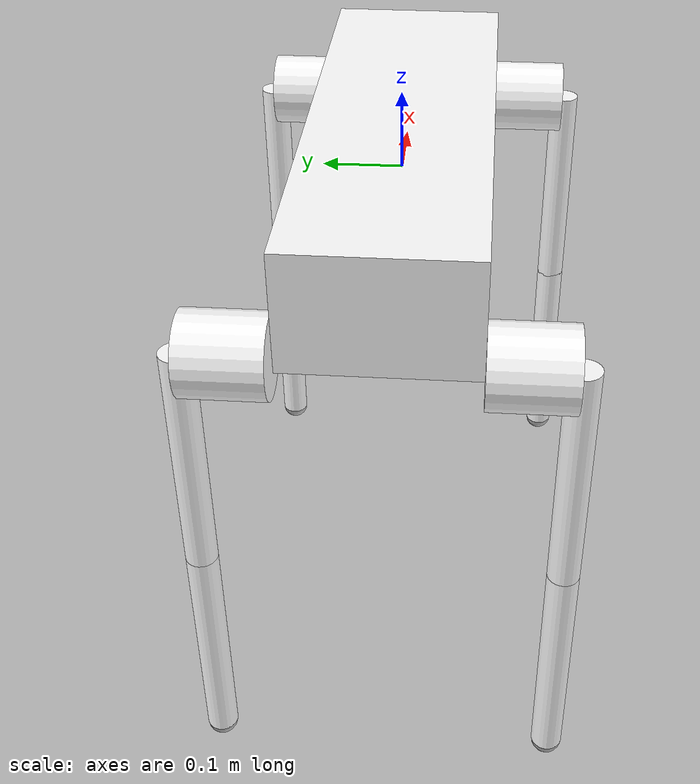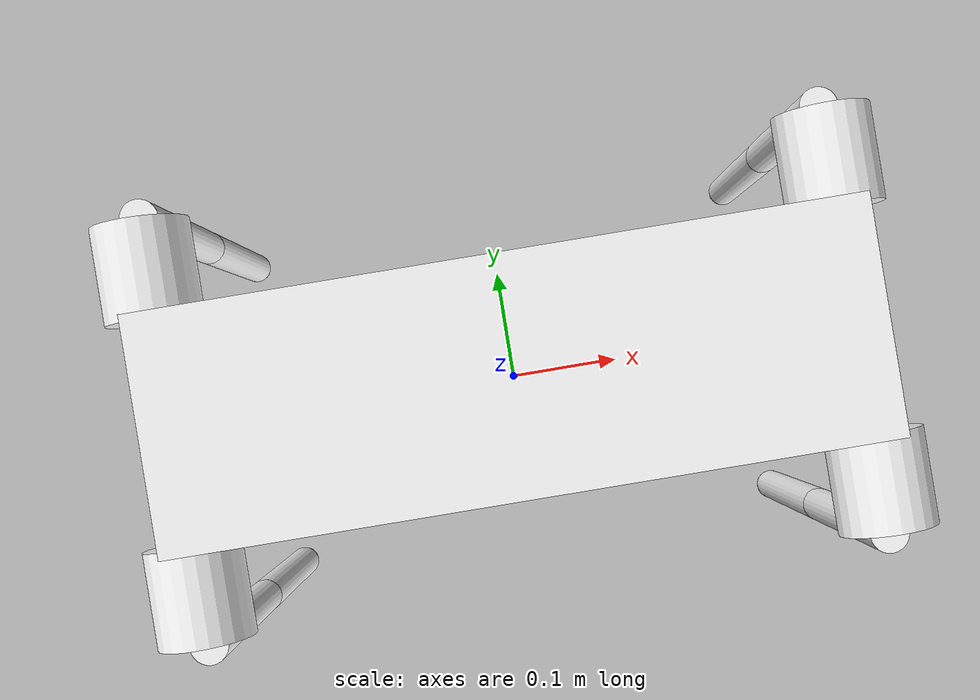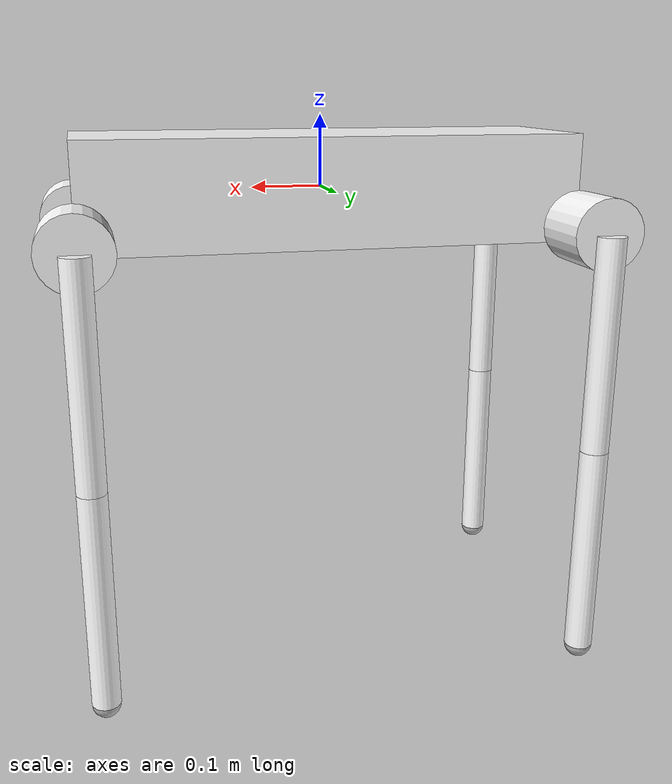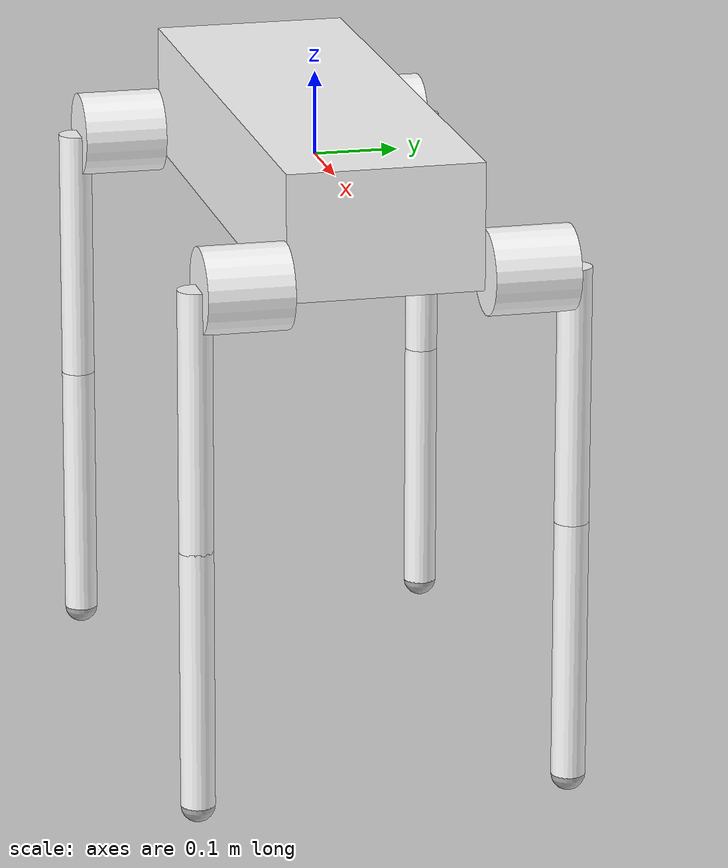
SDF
<sdf version='1.6'>
  <model name='qbot'>
     <joint name="fixed to ground" type="fixed">
       <parent>world</parent>
       <child>BODY</child>
     </joint>

    <link name='BODY'>
      <pose frame=''>0 0 0 0 -0 0</pose>
      <inertial>
        <pose frame=''>-0.038 0 -0.01 0 -0 0</pose>
        <mass>24.7</mass>
        <inertia>
          <ixx>0.34</ixx>
          <ixy>0</ixy>
          <ixz>0</ixz>
          <iyy>1.88</iyy>
          <iyz>0</iyz>
          <izz>1.98</izz>
        </inertia>
      </inertial>
      <visual name='BODY_visual'>
        <pose frame=''>0 0 0 0 -0 0</pose>
        <geometry>
          <box>
            <size>0.7 0.23 0.15</size>
          </box>
        </geometry>
	<material>
          <ambient>97 97 97 1</ambient>
          <diffuse>1 1 1 1</diffuse>
          <emissive>0 0 0 0</emissive>
          <specular>0 0 0 0</specular>
        </material>
      </visual>
	<sensor name='IMU' type='imu'>
        <pose frame=''>0.0 0 -0.075 0 -0 0</pose>
        <imu>
          <angular_velocity>
            <x>
              <noise type='none'></noise>
            </x>
            <y>
              <noise type='none'></noise>
            </y>
            <z>
              <noise type='none'></noise>
            </z>
          </angular_velocity>
          <linear_acceleration>
            <x>
              <noise type='none'></noise>
            </x>
            <y>
              <noise type="none"></noise>
            </y>
            <z>
              <noise type='none'></noise>
            </z>
          </linear_acceleration>
        </imu>
        <always_on>1</always_on>
        <update_rate>1000</update_rate>
        <visualize>true</visualize>
      </sensor>
    </link>
    <link name='FL_HIP'>
      <pose frame=''>0.35 0.115 -0.053 0 -0 0</pose>
      <inertial>
        <pose frame=''>-0 0.0029 0 0 -0 0</pose>
        <mass>1.5346</mass>
        <inertia>
          <ixx>0.001</ixx>
          <ixy>0</ixy>
          <ixz>0</ixz>
          <iyy>0.001</iyy>
          <iyz>0</iyz>
          <izz>0.001</izz>
        </inertia>
      </inertial>
      <visual name='FL_HIP_visual'>
        <pose frame=''>-0 0.05 0 1.5708 -0 0</pose>
        <geometry>
          <cylinder>
            <length>0.1</length>
            <radius>0.05</radius>
          </cylinder>
        </geometry>
	<material>
          <ambient>213 0 0 1</ambient>
          <diffuse>1 1 1 1</diffuse>
          <emissive>0 0 0 1</emissive>
          <specular>0 0 0 0</specular>
        </material>
      </visual>
    </link>
    <joint name='FL_HR_JOINT' type='revolute'>
      <child>FL_HIP</child>
      <parent>BODY</parent>
      <axis>
        <xyz>1 0 0</xyz>
        <limit>
          <lower>-1e+16</lower>
          <upper>1e+16</upper>
        </limit>
        <dynamics>
          <spring_reference>0</spring_reference>
          <spring_stiffness>0</spring_stiffness>
        </dynamics>
        <use_parent_model_frame>1</use_parent_model_frame>
      </axis>
    </joint>
    <link name='FL_THIGH'>
      <pose frame=''>0.35 0.22 -0.053 0 -0 0</pose>
      <inertial>
        <pose frame=''>-0 -0.01 -0.028 0 -0 0</pose>
        <mass>3.32</mass>
        <inertia>
          <ixx>0.025</ixx>
          <ixy>0</ixy>
          <ixz>0</ixz>
          <iyy>0.025</iyy>
          <iyz>0</iyz>
          <izz>0.0039</izz>
        </inertia>
      </inertial>
      <visual name='FL_THIGH_visual'>
        <pose frame=''>-0 0 -0.1525 0 -0 0</pose>
        <geometry>
          <cylinder>
            <length>0.305</length>
            <radius>0.02</radius>
          </cylinder>
        </geometry>
	<material>
          <ambient>213 0 0 1</ambient>
          <diffuse>1 1 1 1</diffuse>
          <emissive>0 0 0 1</emissive>
          <specular>0 0 0 0</specular>
        </material>
      </visual>
    </link>
    <joint name='FL_HP_JOINT' type='revolute'>
      <child>FL_THIGH</child>
      <parent>FL_HIP</parent>
      <axis>
        <xyz>0 1 0</xyz>
        <limit>
          <lower>-1e+16</lower>
          <upper>1e+16</upper>
        </limit>
        <dynamics>
          <spring_reference>0</spring_reference>
          <spring_stiffness>0</spring_stiffness>
        </dynamics>
        <use_parent_model_frame>1</use_parent_model_frame>
      </axis>
    </joint>
    <link name='FL_CALF'>
      <pose frame=''>0.35 0.22 -0.358 0 -0 0</pose>
      <inertial>
        <pose frame=''>0 0 -0.141979 0 -0 0</pose>
        <mass>0.7376</mass>
        <inertia>
          <ixx>0.0100007</ixx>
          <ixy>0</ixy>
          <ixz>0</ixz>
          <iyy>0.0110007</iyy>
          <iyz>0</iyz>
          <izz>0.00148</izz>
        </inertia>
      </inertial>
      <collision name='FL_CALF_fixed_joint_lump__FL_TIP_collision'>
        <pose frame=''>0 0 -0.309 0 -0 0</pose>
        <geometry>
          <sphere>
            <radius>0.02</radius>
          </sphere>
        </geometry>
	<surface>
          <bounce>
            <restitution_coefficient> 0 </restitution_coefficient>
          </bounce>
          <friction>
            <ode>
               <mu>  1  </mu>
              <mu2> 1  </mu2>
            </ode>
          </friction>
          <contact>
            <ode>
              <kp>5000000</kp>
              <kd>5000</kd> -->
               <max_vel>0.1</max_vel>
               <min_depth>0.0001</min_depth>
            </ode>
          </contact>
        </surface>
      </collision>
      <visual name='FL_CALF_visual'>
        <pose frame=''>-0 0 -0.1545 0 -0 0</pose>
        <geometry>
          <cylinder>
            <length>0.309</length>
            <radius>0.02</radius>
          </cylinder>
        </geometry>
	<material>
          <ambient>33 33 33 1</ambient>
          <diffuse>1 1 1 1</diffuse>
          <emissive>0 0 0 1</emissive>
          <specular>0 0 0 0</specular>
        </material>
      </visual>
      <visual name='FL_CALF_fixed_joint_lump__FL_TIP_visual_1'>
        <pose frame=''>0 0 -0.309 0 -0 0</pose>
        <geometry>
          <sphere>
            <radius>0.02</radius>
          </sphere>
        </geometry>
      </visual>
    </link>
    <joint name='FL_KN_JOINT' type='revolute'>
      <child>FL_CALF</child>
      <parent>FL_THIGH</parent>
      <axis>
        <xyz>0 1 0</xyz>
        <limit>
          <lower>-1e+16</lower>
          <upper>1e+16</upper>
        </limit>
        <dynamics>
          <spring_reference>0</spring_reference>
          <spring_stiffness>0</spring_stiffness>
        </dynamics>
        <use_parent_model_frame>1</use_parent_model_frame>
      </axis>
    </joint>
    <link name='FR_HIP'>
      <pose frame=''>0.35 -0.115 -0.053 0 -0 0</pose>
      <inertial>
        <pose frame=''>-0 -0.0029 0 0 -0 0</pose>
        <mass>1.5346</mass>
        <inertia>
          <ixx>0.001</ixx>
          <ixy>0</ixy>
          <ixz>0</ixz>
          <iyy>0.001</iyy>
          <iyz>0</iyz>
          <izz>0.001</izz>
        </inertia>
      </inertial>
      <visual name='FR_HIP_visual'>
        <pose frame=''>-0 -0.05 0 1.5708 -0 0</pose>
        <geometry>
          <cylinder>
            <length>0.1</length>
            <radius>0.05</radius>
          </cylinder>
        </geometry>
	<material>
          <ambient>213 0 0 1</ambient>
          <diffuse>1 1 1 1</diffuse>
          <emissive>0 0 0 1</emissive>
          <specular>0 0 0 0</specular>
        </material>
      </visual>
    </link>
    <joint name='FR_HR_JOINT' type='revolute'>
      <child>FR_HIP</child>
      <parent>BODY</parent>
      <axis>
        <xyz>1 0 0</xyz>
        <limit>
          <lower>-1e+16</lower>
          <upper>1e+16</upper>
        </limit>
        <dynamics>
          <spring_reference>0</spring_reference>
          <spring_stiffness>0</spring_stiffness>
        </dynamics>
        <use_parent_model_frame>1</use_parent_model_frame>
      </axis>
    </joint>
    <link name='FR_THIGH'>
      <pose frame=''>0.35 -0.22 -0.053 0 -0 0</pose>
      <inertial>
        <pose frame=''>-0 0.01 -0.028 0 -0 0</pose>
        <mass>3.32</mass>
        <inertia>
          <ixx>0.025</ixx>
          <ixy>0</ixy>
          <ixz>0</ixz>
          <iyy>0.025</iyy>
          <iyz>0</iyz>
          <izz>0.0039</izz>
        </inertia>
      </inertial>
      <visual name='FR_THIGH_visual'>
        <pose frame=''>-0 0 -0.1525 0 -0 0</pose>
        <geometry>
          <cylinder>
            <length>0.309</length>
            <radius>0.02</radius>
          </cylinder>
        </geometry>
	<material>
          <ambient>213 0 0 1</ambient>
          <diffuse>1 1 1 1</diffuse>
          <emissive>0 0 0 1</emissive>
          <specular>0 0 0 0</specular>
        </material>
      </visual>
    </link>
    <joint name='FR_HP_JOINT' type='revolute'>
      <child>FR_THIGH</child>
      <parent>FR_HIP</parent>
      <axis>
        <xyz>0 1 0</xyz>
        <limit>
          <lower>-1e+16</lower>
          <upper>1e+16</upper>
        </limit>
        <dynamics>
          <spring_reference>0</spring_reference>
          <spring_stiffness>0</spring_stiffness>
        </dynamics>
        <use_parent_model_frame>1</use_parent_model_frame>
      </axis>
    </joint>
    <link name='FR_CALF'>
      <pose frame=''>0.35 -0.22 -0.358 0 -0 0</pose>
      <inertial>
        <pose frame=''>0 0 -0.141979 0 -0 0</pose>
        <mass>0.7376</mass>
        <inertia>
          <ixx>0.0100007</ixx>
          <ixy>0</ixy>
          <ixz>0</ixz>
          <iyy>0.0110007</iyy>
          <iyz>0</iyz>
          <izz>0.00148</izz>
        </inertia>
      </inertial>
      <collision name='FR_CALF_fixed_joint_lump__FR_TIP_collision'>
        <pose frame=''>0 0 -0.309 0 -0 0</pose>
        <geometry>
          <sphere>
            <radius>0.02</radius>
          </sphere>
        </geometry>
	<surface>
          <bounce>
            <restitution_coefficient> 0 </restitution_coefficient>
          </bounce>
          <friction>
            <ode>
               <mu>  1  </mu>
              <mu2> 1  </mu2>
            </ode>
          </friction>
          <contact>
            <ode>
              <kp>5000000</kp>
              <kd>5000</kd> -->
               <max_vel>0.1</max_vel>
               <min_depth>0.0001</min_depth>
            </ode>
          </contact>
        </surface>
      </collision>
      <visual name='FR_CALF_visual'>
        <pose frame=''>-0 0 -0.1545 0 -0 0</pose>
        <geometry>
          <cylinder>
            <length>0.309</length>
            <radius>0.02</radius>
          </cylinder>
        </geometry>
	<material>
          <ambient>33 33 33 1</ambient>
          <diffuse>1 1 1 1</diffuse>
          <emissive>0 0 0 1</emissive>
          <specular>0 0 0 0</specular>
        </material>
      </visual>
      <visual name='FR_CALF_fixed_joint_lump__FR_TIP_visual_1'>
        <pose frame=''>0 0 -0.309 0 -0 0</pose>
        <geometry>
          <sphere>
            <radius>0.02</radius>
          </sphere>
        </geometry>
      </visual>
    </link>
    <joint name='FR_KN_JOINT' type='revolute'>
      <child>FR_CALF</child>
      <parent>FR_THIGH</parent>
      <axis>
        <xyz>0 1 0</xyz>
        <limit>
          <lower>-1e+16</lower>
          <upper>1e+16</upper>
        </limit>
        <dynamics>
          <spring_reference>0</spring_reference>
          <spring_stiffness>0</spring_stiffness>
        </dynamics>
        <use_parent_model_frame>1</use_parent_model_frame>
      </axis>
    </joint>
    <link name='RL_HIP'>
      <pose frame=''>-0.35 0.115 -0.053 0 -0 0</pose>
      <inertial>
        <pose frame=''>-0 0.0029 0 0 -0 0</pose>
        <mass>1.5346</mass>
        <inertia>
          <ixx>0.001</ixx>
          <ixy>0</ixy>
          <ixz>0</ixz>
          <iyy>0.001</iyy>
          <iyz>0</iyz>
          <izz>0.001</izz>
        </inertia>
      </inertial>
      <visual name='RL_HIP_visual'>
        <pose frame=''>-0 0.05 0 1.5708 -0 0</pose>
        <geometry>
          <cylinder>
            <length>0.1</length>
            <radius>0.05</radius>
          </cylinder>
        </geometry>
	<material>
          <ambient>213 0 0 1</ambient>
          <diffuse>1 1 1 1</diffuse>
          <emissive>0 0 0 1</emissive>
          <specular>0 0 0 0</specular>
        </material>
      </visual>
    </link>
    <joint name='RL_HR_JOINT' type='revolute'>
      <child>RL_HIP</child>
      <parent>BODY</parent>
      <axis>
        <xyz>1 0 0</xyz>
        <limit>
          <lower>-1e+16</lower>
          <upper>1e+16</upper>
        </limit>
        <dynamics>
          <spring_reference>0</spring_reference>
          <spring_stiffness>0</spring_stiffness>
        </dynamics>
        <use_parent_model_frame>1</use_parent_model_frame>
      </axis>
    </joint>
    <link name='RL_THIGH'>
      <pose frame=''>-0.35 0.22 -0.053 0 -0 0</pose>
      <inertial>
        <pose frame=''>-0 -0.01 -0.028 0 -0 0</pose>
        <mass>3.32</mass>
        <inertia>
          <ixx>0.025</ixx>
          <ixy>0</ixy>
          <ixz>0</ixz>
          <iyy>0.025</iyy>
          <iyz>0</iyz>
          <izz>0.0039</izz>
        </inertia>
      </inertial>
      <visual name='RL_THIGH_visual'>
        <pose frame=''>-0 0 -0.1525 0 -0 0</pose>
        <geometry>
          <cylinder>
            <length>0.305</length>
            <radius>0.02</radius>
          </cylinder>
        </geometry>
	<material>
          <ambient>213 0 0 1</ambient>
          <diffuse>1 1 1 1</diffuse>
          <emissive>0 0 0 1</emissive>
          <specular>0 0 0 0</specular>
        </material>
      </visual>
    </link>
    <joint name='RL_HP_JOINT' type='revolute'>
      <child>RL_THIGH</child>
      <parent>RL_HIP</parent>
      <axis>
        <xyz>0 1 0</xyz>
        <limit>
          <lower>-1e+16</lower>
          <upper>1e+16</upper>
        </limit>
        <dynamics>
          <spring_reference>0</spring_reference>
          <spring_stiffness>0</spring_stiffness>
        </dynamics>
        <use_parent_model_frame>1</use_parent_model_frame>
      </axis>
    </joint>
    <link name='RL_CALF'>
      <pose frame=''>-0.35 0.22 -0.358 0 -0 0</pose>
      <inertial>
        <pose frame=''>0 0 -0.141979 0 -0 0</pose>
        <mass>0.7376</mass>
        <inertia>
          <ixx>0.0100007</ixx>
          <ixy>0</ixy>
          <ixz>0</ixz>
          <iyy>0.0110007</iyy>
          <iyz>0</iyz>
          <izz>0.00148</izz>
        </inertia>
      </inertial>
      <collision name='RL_CALF_fixed_joint_lump__RL_TIP_collision'>
        <pose frame=''>0 0 -0.309 0 -0 0</pose>
        <geometry>
          <sphere>
            <radius>0.02</radius>
          </sphere>
        </geometry>
	<surface>
          <bounce>
            <restitution_coefficient> 0 </restitution_coefficient>
          </bounce>
          <friction>
            <ode>
               <mu>  1  </mu>
              <mu2> 1  </mu2>
            </ode>
          </friction>
          <contact>
            <ode>
              <kp>5000000</kp>
              <kd>5000</kd> -->
               <max_vel>0.1</max_vel>
               <min_depth>0.0001</min_depth>
            </ode>
          </contact>
        </surface>
      </collision>
      <visual name='RL_CALF_visual'>
        <pose frame=''>-0 0 -0.1545 0 -0 0</pose>
        <geometry>
          <cylinder>
            <length>0.309</length>
            <radius>0.02</radius>
          </cylinder>
        </geometry>
	<material>
          <ambient>33 33 33 1</ambient>
          <diffuse>1 1 1 1</diffuse>
          <emissive>0 0 0 1</emissive>
          <specular>0 0 0 0</specular>
        </material>
      </visual>
      <visual name='RL_CALF_fixed_joint_lump__RL_TIP_visual_1'>
        <pose frame=''>0 0 -0.309 0 -0 0</pose>
        <geometry>
          <sphere>
            <radius>0.02</radius>
          </sphere>
        </geometry>
      </visual>
    </link>
    <joint name='RL_KN_JOINT' type='revolute'>
      <child>RL_CALF</child>
      <parent>RL_THIGH</parent>
      <axis>
        <xyz>0 1 0</xyz>
        <limit>
          <lower>-1e+16</lower>
          <upper>1e+16</upper>
        </limit>
        <dynamics>
          <spring_reference>0</spring_reference>
          <spring_stiffness>0</spring_stiffness>
        </dynamics>
        <use_parent_model_frame>1</use_parent_model_frame>
      </axis>
    </joint>
    <link name='RR_HIP'>
      <pose frame=''>-0.35 -0.115 -0.053 0 -0 0</pose>
      <inertial>
        <pose frame=''>-0 -0.0029 0 0 -0 0</pose>
        <mass>1.5346</mass>
        <inertia>
          <ixx>0.001</ixx>
          <ixy>0</ixy>
          <ixz>0</ixz>
          <iyy>0.001</iyy>
          <iyz>0</iyz>
          <izz>0.001</izz>
        </inertia>
      </inertial>
      <visual name='RR_HIP_visual'>
        <pose frame=''>-0 -0.05 0 1.5708 -0 0</pose>
        <geometry>
          <cylinder>
            <length>0.1</length>
            <radius>0.05</radius>
          </cylinder>
        </geometry>
	<material>
          <ambient>213 0 0 1</ambient>
          <diffuse>1 1 1 1</diffuse>
          <emissive>0 0 0 1</emissive>
          <specular>0 0 0 0</specular>
        </material>
      </visual>
    </link>
    <joint name='RR_HR_JOINT' type='revolute'>
      <child>RR_HIP</child>
      <parent>BODY</parent>
      <axis>
        <xyz>1 0 0</xyz>
        <limit>
          <lower>-1e+16</lower>
          <upper>1e+16</upper>
        </limit>
        <dynamics>
          <spring_reference>0</spring_reference>
          <spring_stiffness>0</spring_stiffness>
        </dynamics>
        <use_parent_model_frame>1</use_parent_model_frame>
      </axis>
    </joint>
    <link name='RR_THIGH'>
      <pose frame=''>-0.35 -0.22 -0.053 0 -0 0</pose>
      <inertial>
        <pose frame=''>-0 0.01 -0.028 0 -0 0</pose>
        <mass>3.32</mass>
        <inertia>
          <ixx>0.025</ixx>
          <ixy>0</ixy>
          <ixz>0</ixz>
          <iyy>0.025</iyy>
          <iyz>0</iyz>
          <izz>0.0039</izz>
        </inertia>
      </inertial>
      <visual name='RR_THIGH_visual'>
        <pose frame=''>-0 0 -0.1525 0 -0 0</pose>
        <geometry>
          <cylinder>
            <length>0.305</length>
            <radius>0.02</radius>
          </cylinder>
        </geometry>
	<material>
          <ambient>213 0 0 1</ambient>
          <diffuse>1 1 1 1</diffuse>
          <emissive>0 0 0 1</emissive>
          <specular>0 0 0 0</specular>
        </material>
      </visual>
    </link>
    <joint name='RR_HP_JOINT' type='revolute'>
      <child>RR_THIGH</child>
      <parent>RR_HIP</parent>
      <axis>
        <xyz>0 1 0</xyz>
        <limit>
          <lower>-1e+16</lower>
          <upper>1e+16</upper>
        </limit>
        <dynamics>
          <spring_reference>0</spring_reference>
          <spring_stiffness>0</spring_stiffness>
        </dynamics>
        <use_parent_model_frame>1</use_parent_model_frame>
      </axis>
    </joint>
    <link name='RR_CALF'>
      <pose frame=''>-0.35 -0.22 -0.358 0 -0 0</pose>
      <inertial>
        <pose frame=''>0 0 -0.141979 0 -0 0</pose>
        <mass>0.7376</mass>
        <inertia>
          <ixx>0.0100007</ixx>
          <ixy>0</ixy>
          <ixz>0</ixz>
          <iyy>0.0110007</iyy>
          <iyz>0</iyz>
          <izz>0.00148</izz>
        </inertia>
      </inertial>
      <collision name='RR_CALF_fixed_joint_lump__RR_TIP_collision'>
        <pose frame=''>0 0 -0.309 0 -0 0</pose>
        <geometry>
          <sphere>
            <radius>0.02</radius>
          </sphere>
        </geometry>
	<surface>
          <bounce>
            <restitution_coefficient> 0 </restitution_coefficient>
          </bounce>
          <friction>
            <ode>
               <mu>  1  </mu>
              <mu2> 1  </mu2>
            </ode>
          </friction>
          <contact>
            <ode>
              <kp>5000000</kp>
              <kd>5000</kd> -->
               <max_vel>0.1</max_vel>
               <min_depth>0.0001</min_depth>
            </ode>
          </contact>
        </surface>
      </collision>
      <visual name='RR_CALF_visual'>
        <pose frame=''>-0 0 -0.1545 0 -0 0</pose>
        <geometry>
          <cylinder>
            <length>0.309</length>
            <radius>0.02</radius>
          </cylinder>
        </geometry>
	<material>
          <ambient>33 33 33 1</ambient>
          <diffuse>1 1 1 1</diffuse>
          <emissive>0 0 0 1</emissive>
          <specular>0 0 0 0</specular>
        </material>
      </visual>
      <visual name='RR_CALF_fixed_joint_lump__RR_TIP_visual_1'>
        <pose frame=''>0 0 -0.309 0 -0 0</pose>
        <geometry>
          <sphere>
            <radius>0.02</radius>
          </sphere>
        </geometry>
      </visual>
    </link>
    <joint name='RR_KN_JOINT' type='revolute'>
      <child>RR_CALF</child>
      <parent>RR_THIGH</parent>
      <axis>
        <xyz>0 1 0</xyz>
        <limit>
          <lower>-1e+16</lower>
          <upper>1e+16</upper>
        </limit>
        <dynamics>
          <spring_reference>0</spring_reference>
          <spring_stiffness>0</spring_stiffness>
        </dynamics>
        <use_parent_model_frame>1</use_parent_model_frame>
      </axis>
    </joint>
  </model>
</sdf>
